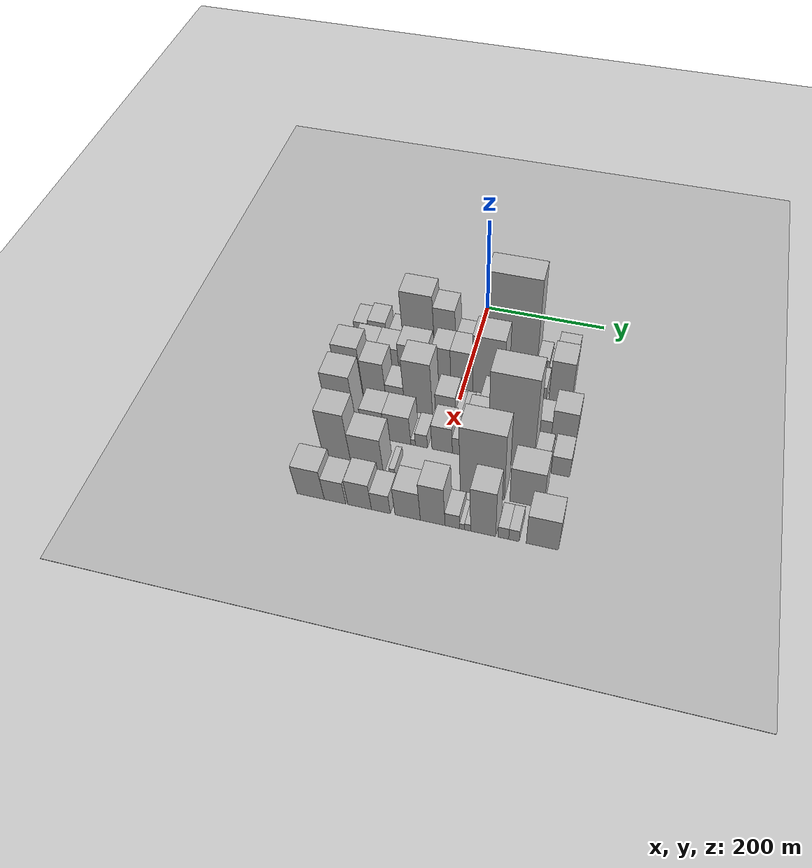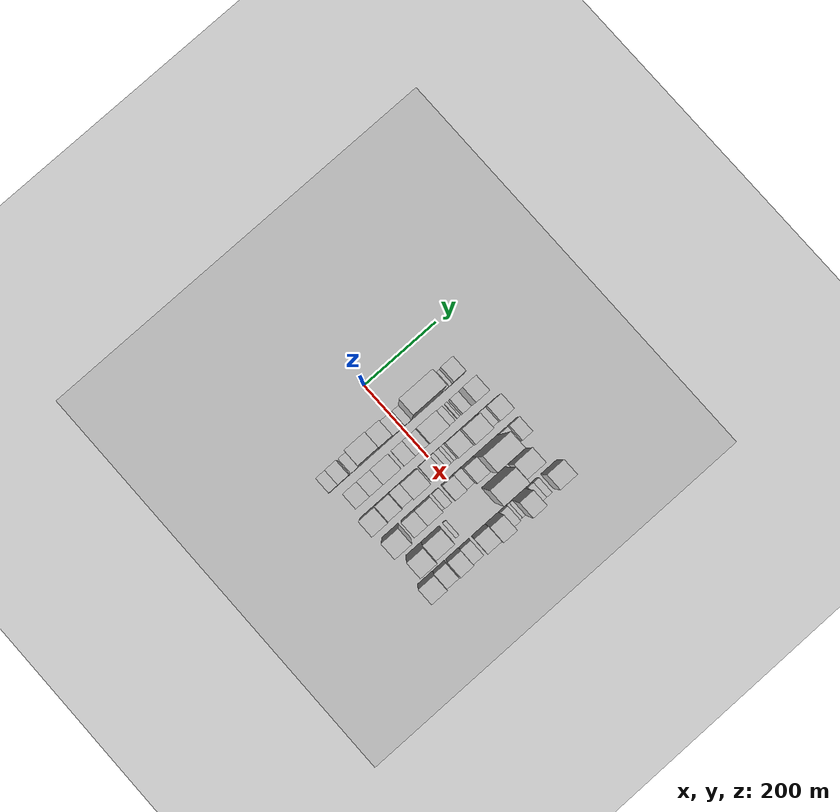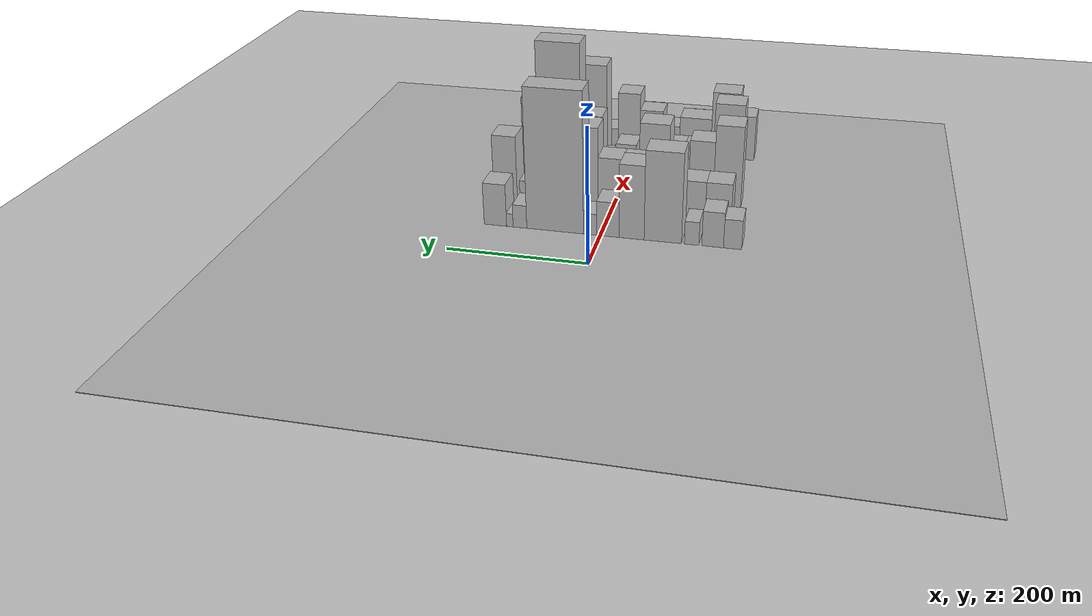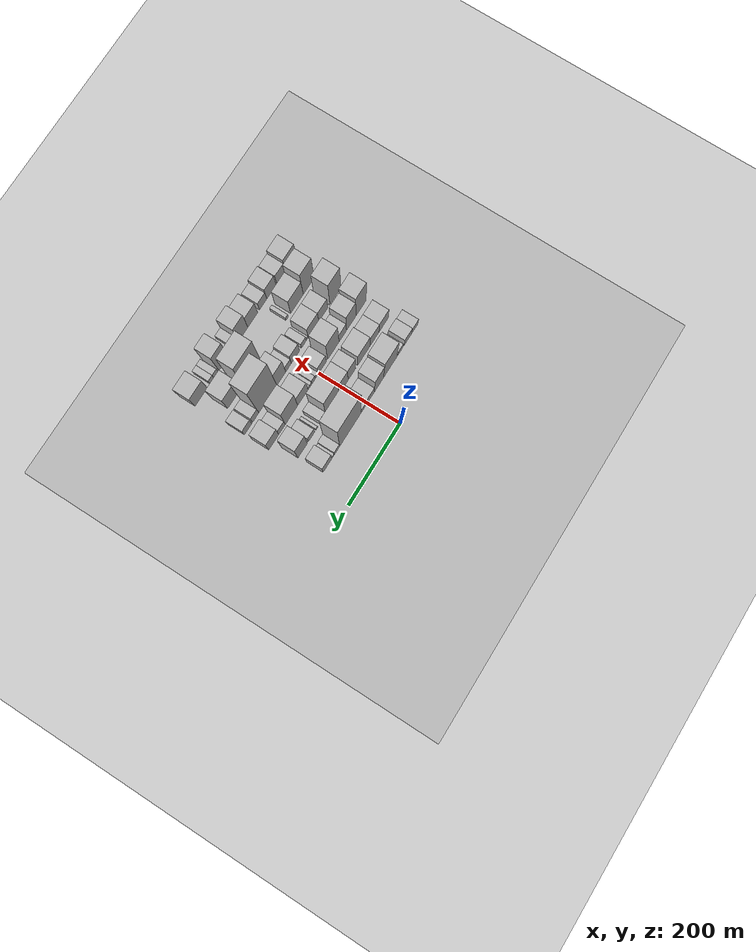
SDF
<sdf version="1.6">
 <world name="default">
  <include><name>ground_plane_1</name><uri>model://HANNAS_ground_plane</uri></include>
  <include>
   <name>ground_plane_2</name>
   <uri>model://HANNAS_ground_plane</uri>
   <pose>100 0 0  0 0 0</pose>
  </include>
  <model name="building_19">
   <static>1</static>
   <pose>100.0000 -186.5573 0 0.000000 0.000000 0.000000</pose>
   <link name="link">
    <pose>0 0 22.50 0 0 0</pose>
    <collision name="collision"><geometry><box><size>40.0000 25.0863 45.0000</size></box></geometry></collision>
    <visual name="visual">
     <cast_shadows>0</cast_shadows>
     <geometry><box><size>40.0000 25.0863 45.0000</size></box></geometry>
     <material>
      <script>
       <uri>model://HANNAS_wall/materials/scripts</uri>
       <uri>model://HANNAS_wall/materials/textures</uri>
       <name>vrc/HANNAS_wall</name>
      </script>
     </material>
    </visual>
   </link>
  </model>
  <model name="building_20">
   <static>1</static>
   <pose>100.0000 -158.9366 0 0.000000 0.000000 0.000000</pose>
   <link name="link">
    <pose>0 0 27.00 0 0 0</pose>
    <collision name="collision"><geometry><box><size>40.0000 30.1553 54.0000</size></box></geometry></collision>
    <visual name="visual">
     <cast_shadows>0</cast_shadows>
     <geometry><box><size>40.0000 30.1553 54.0000</size></box></geometry>
     <material>
      <script>
       <uri>model://HANNAS_wall/materials/scripts</uri>
       <uri>model://HANNAS_wall/materials/textures</uri>
       <name>vrc/HANNAS_wall</name>
      </script>
     </material>
    </visual>
   </link>
  </model>
  <model name="building_21">
   <static>1</static>
   <pose>100.0000 -129.6776 0 0.000000 0.000000 0.000000</pose>
   <link name="link">
    <pose>0 0 18.00 0 0 0</pose>
    <collision name="collision"><geometry><box><size>40.0000 20.3625 36.0000</size></box></geometry></collision>
    <visual name="visual">
     <cast_shadows>0</cast_shadows>
     <geometry><box><size>40.0000 20.3625 36.0000</size></box></geometry>
     <material>
      <script>
       <uri>model://HANNAS_wall/materials/scripts</uri>
       <uri>model://HANNAS_wall/materials/textures</uri>
       <name>vrc/HANNAS_wall</name>
      </script>
     </material>
    </visual>
   </link>
  </model>
  <model name="building_22">
   <static>1</static>
   <pose>100.0000 -89.0417 0 0.000000 0.000000 0.000000</pose>
   <link name="link">
    <pose>0 0 69.00 0 0 0</pose>
    <collision name="collision"><geometry><box><size>40.0000 52.9093 138.0000</size></box></geometry></collision>
    <visual name="visual">
     <cast_shadows>0</cast_shadows>
     <geometry><box><size>40.0000 52.9093 138.0000</size></box></geometry>
     <material>
      <script>
       <uri>model://HANNAS_wall/materials/scripts</uri>
       <uri>model://HANNAS_wall/materials/textures</uri>
       <name>vrc/HANNAS_wall</name>
      </script>
     </material>
    </visual>
   </link>
  </model>
  <model name="building_23">
   <static>1</static>
   <pose>100.0000 -44.6162 0 0.000000 0.000000 0.000000</pose>
   <link name="link">
    <pose>0 0 57.00 0 0 0</pose>
    <collision name="collision"><geometry><box><size>40.0000 35.9416 114.0000</size></box></geometry></collision>
    <visual name="visual">
     <cast_shadows>0</cast_shadows>
     <geometry><box><size>40.0000 35.9416 114.0000</size></box></geometry>
     <material>
      <script>
       <uri>model://HANNAS_wall/materials/scripts</uri>
       <uri>model://HANNAS_wall/materials/textures</uri>
       <name>vrc/HANNAS_wall</name>
      </script>
     </material>
    </visual>
   </link>
  </model>
  <model name="building_24">
   <static>1</static>
   <pose>100.0000 -10.5844 0 0.000000 0.000000 0.000000</pose>
   <link name="link">
    <pose>0 0 27.00 0 0 0</pose>
    <collision name="collision"><geometry><box><size>40.0000 32.1220 54.0000</size></box></geometry></collision>
    <visual name="visual">
     <cast_shadows>0</cast_shadows>
     <geometry><box><size>40.0000 32.1220 54.0000</size></box></geometry>
     <material>
      <script>
       <uri>model://HANNAS_wall/materials/scripts</uri>
       <uri>model://HANNAS_wall/materials/textures</uri>
       <name>vrc/HANNAS_wall</name>
      </script>
     </material>
    </visual>
   </link>
  </model>
  <model name="building_25">
   <static>1</static>
   <pose>100.0000 14.9822 0 0.000000 0.000000 0.000000</pose>
   <link name="link">
    <pose>0 0 16.50 0 0 0</pose>
    <collision name="collision"><geometry><box><size>40.0000 19.0114 33.0000</size></box></geometry></collision>
    <visual name="visual">
     <cast_shadows>0</cast_shadows>
     <geometry><box><size>40.0000 19.0114 33.0000</size></box></geometry>
     <material>
      <script>
       <uri>model://HANNAS_wall/materials/scripts</uri>
       <uri>model://HANNAS_wall/materials/textures</uri>
       <name>vrc/HANNAS_wall</name>
      </script>
     </material>
    </visual>
   </link>
  </model>
  <model name="building_26">
   <static>1</static>
   <pose>100.0000 66.0250 0 0.000000 0.000000 0.000000</pose>
   <link name="link">
    <pose>0 0 108.00 0 0 0</pose>
    <collision name="collision"><geometry><box><size>40.0000 83.0741 216.0000</size></box></geometry></collision>
    <visual name="visual">
     <cast_shadows>0</cast_shadows>
     <geometry><box><size>40.0000 83.0741 216.0000</size></box></geometry>
     <material>
      <script>
       <uri>model://HANNAS_wall/materials/scripts</uri>
       <uri>model://HANNAS_wall/materials/textures</uri>
       <name>vrc/HANNAS_wall</name>
      </script>
     </material>
    </visual>
   </link>
  </model>
  <model name="building_27">
   <static>1</static>
   <pose>100.0000 117.6457 0 0.000000 0.000000 0.000000</pose>
   <link name="link">
    <pose>0 0 18.00 0 0 0</pose>
    <collision name="collision"><geometry><box><size>40.0000 20.1674 36.0000</size></box></geometry></collision>
    <visual name="visual">
     <cast_shadows>0</cast_shadows>
     <geometry><box><size>40.0000 20.1674 36.0000</size></box></geometry>
     <material>
      <script>
       <uri>model://HANNAS_wall/materials/scripts</uri>
       <uri>model://HANNAS_wall/materials/textures</uri>
       <name>vrc/HANNAS_wall</name>
      </script>
     </material>
    </visual>
   </link>
  </model>
  <model name="building_28">
   <static>1</static>
   <pose>100.0000 132.5284 0 0.000000 0.000000 0.000000</pose>
   <link name="link">
    <pose>0 0 10.50 0 0 0</pose>
    <collision name="collision"><geometry><box><size>40.0000 9.5981 21.0000</size></box></geometry></collision>
    <visual name="visual">
     <cast_shadows>0</cast_shadows>
     <geometry><box><size>40.0000 9.5981 21.0000</size></box></geometry>
     <material>
      <script>
       <uri>model://HANNAS_wall/materials/scripts</uri>
       <uri>model://HANNAS_wall/materials/textures</uri>
       <name>vrc/HANNAS_wall</name>
      </script>
     </material>
    </visual>
   </link>
  </model>
  <model name="building_29">
   <static>1</static>
   <pose>100.0000 154.0062 0 0.000000 0.000000 0.000000</pose>
   <link name="link">
    <pose>0 0 33.00 0 0 0</pose>
    <collision name="collision"><geometry><box><size>40.0000 33.3574 66.0000</size></box></geometry></collision>
    <visual name="visual">
     <cast_shadows>0</cast_shadows>
     <geometry><box><size>40.0000 33.3574 66.0000</size></box></geometry>
     <material>
      <script>
       <uri>model://HANNAS_wall/materials/scripts</uri>
       <uri>model://HANNAS_wall/materials/textures</uri>
       <name>vrc/HANNAS_wall</name>
      </script>
     </material>
    </visual>
   </link>
  </model>
  <model name="building_75">
   <static>1</static>
   <pose>160.0000 -159.3010 0 0.000000 0.000000 0.000000</pose>
   <link name="link">
    <pose>0 0 34.50 0 0 0</pose>
    <collision name="collision"><geometry><box><size>40.0000 37.1538 69.0000</size></box></geometry></collision>
    <visual name="visual">
     <cast_shadows>0</cast_shadows>
     <geometry><box><size>40.0000 37.1538 69.0000</size></box></geometry>
     <material>
      <script>
       <uri>model://HANNAS_wall/materials/scripts</uri>
       <uri>model://HANNAS_wall/materials/textures</uri>
       <name>vrc/HANNAS_wall</name>
      </script>
     </material>
    </visual>
   </link>
  </model>
  <model name="building_76">
   <static>1</static>
   <pose>160.0000 -122.7183 0 0.000000 0.000000 0.000000</pose>
   <link name="link">
    <pose>0 0 34.50 0 0 0</pose>
    <collision name="collision"><geometry><box><size>40.0000 36.0114 69.0000</size></box></geometry></collision>
    <visual name="visual">
     <cast_shadows>0</cast_shadows>
     <geometry><box><size>40.0000 36.0114 69.0000</size></box></geometry>
     <material>
      <script>
       <uri>model://HANNAS_wall/materials/scripts</uri>
       <uri>model://HANNAS_wall/materials/textures</uri>
       <name>vrc/HANNAS_wall</name>
      </script>
     </material>
    </visual>
   </link>
  </model>
  <model name="building_77">
   <static>1</static>
   <pose>160.0000 -80.9137 0 0.000000 0.000000 0.000000</pose>
   <link name="link">
    <pose>0 0 42.00 0 0 0</pose>
    <collision name="collision"><geometry><box><size>40.0000 47.5979 84.0000</size></box></geometry></collision>
    <visual name="visual">
     <cast_shadows>0</cast_shadows>
     <geometry><box><size>40.0000 47.5979 84.0000</size></box></geometry>
     <material>
      <script>
       <uri>model://HANNAS_wall/materials/scripts</uri>
       <uri>model://HANNAS_wall/materials/textures</uri>
       <name>vrc/HANNAS_wall</name>
      </script>
     </material>
    </visual>
   </link>
  </model>
  <model name="building_78">
   <static>1</static>
   <pose>160.0000 -34.3015 0 0.000000 0.000000 0.000000</pose>
   <link name="link">
    <pose>0 0 46.50 0 0 0</pose>
    <collision name="collision"><geometry><box><size>40.0000 29.6264 93.0000</size></box></geometry></collision>
    <visual name="visual">
     <cast_shadows>0</cast_shadows>
     <geometry><box><size>40.0000 29.6264 93.0000</size></box></geometry>
     <material>
      <script>
       <uri>model://HANNAS_wall/materials/scripts</uri>
       <uri>model://HANNAS_wall/materials/textures</uri>
       <name>vrc/HANNAS_wall</name>
      </script>
     </material>
    </visual>
   </link>
  </model>
  <model name="building_79">
   <static>1</static>
   <pose>160.0000 -1.6350 0 0.000000 0.000000 0.000000</pose>
   <link name="link">
    <pose>0 0 46.50 0 0 0</pose>
    <collision name="collision"><geometry><box><size>40.0000 35.7067 93.0000</size></box></geometry></collision>
    <visual name="visual">
     <cast_shadows>0</cast_shadows>
     <geometry><box><size>40.0000 35.7067 93.0000</size></box></geometry>
     <material>
      <script>
       <uri>model://HANNAS_wall/materials/scripts</uri>
       <uri>model://HANNAS_wall/materials/textures</uri>
       <name>vrc/HANNAS_wall</name>
      </script>
     </material>
    </visual>
   </link>
  </model>
  <model name="building_80">
   <static>1</static>
   <pose>160.0000 41.6884 0 0.000000 0.000000 0.000000</pose>
   <link name="link">
    <pose>0 0 69.00 0 0 0</pose>
    <collision name="collision"><geometry><box><size>40.0000 50.9400 138.0000</size></box></geometry></collision>
    <visual name="visual">
     <cast_shadows>0</cast_shadows>
     <geometry><box><size>40.0000 50.9400 138.0000</size></box></geometry>
     <material>
      <script>
       <uri>model://HANNAS_wall/materials/scripts</uri>
       <uri>model://HANNAS_wall/materials/textures</uri>
       <name>vrc/HANNAS_wall</name>
      </script>
     </material>
    </visual>
   </link>
  </model>
  <model name="building_81">
   <static>1</static>
   <pose>160.0000 78.5458 0 0.000000 0.000000 0.000000</pose>
   <link name="link">
    <pose>0 0 21.00 0 0 0</pose>
    <collision name="collision"><geometry><box><size>40.0000 22.7749 42.0000</size></box></geometry></collision>
    <visual name="visual">
     <cast_shadows>0</cast_shadows>
     <geometry><box><size>40.0000 22.7749 42.0000</size></box></geometry>
     <material>
      <script>
       <uri>model://HANNAS_wall/materials/scripts</uri>
       <uri>model://HANNAS_wall/materials/textures</uri>
       <name>vrc/HANNAS_wall</name>
      </script>
     </material>
    </visual>
   </link>
  </model>
  <model name="building_82">
   <static>1</static>
   <pose>160.0000 101.3450 0 0.000000 0.000000 0.000000</pose>
   <link name="link">
    <pose>0 0 7.50 0 0 0</pose>
    <collision name="collision"><geometry><box><size>40.0000 6.8236 15.0000</size></box></geometry></collision>
    <visual name="visual">
     <cast_shadows>0</cast_shadows>
     <geometry><box><size>40.0000 6.8236 15.0000</size></box></geometry>
     <material>
      <script>
       <uri>model://HANNAS_wall/materials/scripts</uri>
       <uri>model://HANNAS_wall/materials/textures</uri>
       <name>vrc/HANNAS_wall</name>
      </script>
     </material>
    </visual>
   </link>
  </model>
  <model name="building_83">
   <static>1</static>
   <pose>160.0000 121.7376 0 0.000000 0.000000 0.000000</pose>
   <link name="link">
    <pose>0 0 22.50 0 0 0</pose>
    <collision name="collision"><geometry><box><size>40.0000 23.9615 45.0000</size></box></geometry></collision>
    <visual name="visual">
     <cast_shadows>0</cast_shadows>
     <geometry><box><size>40.0000 23.9615 45.0000</size></box></geometry>
     <material>
      <script>
       <uri>model://HANNAS_wall/materials/scripts</uri>
       <uri>model://HANNAS_wall/materials/textures</uri>
       <name>vrc/HANNAS_wall</name>
      </script>
     </material>
    </visual>
   </link>
  </model>
  <model name="building_84">
   <static>1</static>
   <pose>160.0000 155.5634 0 0.000000 0.000000 0.000000</pose>
   <link name="link">
    <pose>0 0 57.00 0 0 0</pose>
    <collision name="collision"><geometry><box><size>40.0000 35.6902 114.0000</size></box></geometry></collision>
    <visual name="visual">
     <cast_shadows>0</cast_shadows>
     <geometry><box><size>40.0000 35.6902 114.0000</size></box></geometry>
     <material>
      <script>
       <uri>model://HANNAS_wall/materials/scripts</uri>
       <uri>model://HANNAS_wall/materials/textures</uri>
       <name>vrc/HANNAS_wall</name>
      </script>
     </material>
    </visual>
   </link>
  </model>
  <model name="building_131">
   <static>1</static>
   <pose>220.0000 -165.0644 0 0.000000 0.000000 0.000000</pose>
   <link name="link">
    <pose>0 0 66.00 0 0 0</pose>
    <collision name="collision"><geometry><box><size>40.0000 40.8258 132.0000</size></box></geometry></collision>
    <visual name="visual">
     <cast_shadows>0</cast_shadows>
     <geometry><box><size>40.0000 40.8258 132.0000</size></box></geometry>
     <material>
      <script>
       <uri>model://HANNAS_wall/materials/scripts</uri>
       <uri>model://HANNAS_wall/materials/textures</uri>
       <name>vrc/HANNAS_wall</name>
      </script>
     </material>
    </visual>
   </link>
  </model>
  <model name="building_132">
   <static>1</static>
   <pose>220.0000 -126.2714 0 0.000000 0.000000 0.000000</pose>
   <link name="link">
    <pose>0 0 52.50 0 0 0</pose>
    <collision name="collision"><geometry><box><size>40.0000 36.7603 105.0000</size></box></geometry></collision>
    <visual name="visual">
     <cast_shadows>0</cast_shadows>
     <geometry><box><size>40.0000 36.7603 105.0000</size></box></geometry>
     <material>
      <script>
       <uri>model://HANNAS_wall/materials/scripts</uri>
       <uri>model://HANNAS_wall/materials/textures</uri>
       <name>vrc/HANNAS_wall</name>
      </script>
     </material>
    </visual>
   </link>
  </model>
  <model name="building_133">
   <static>1</static>
   <pose>220.0000 -93.1125 0 0.000000 0.000000 0.000000</pose>
   <link name="link">
    <pose>0 0 28.50 0 0 0</pose>
    <collision name="collision"><geometry><box><size>40.0000 29.5576 57.0000</size></box></geometry></collision>
    <visual name="visual">
     <cast_shadows>0</cast_shadows>
     <geometry><box><size>40.0000 29.5576 57.0000</size></box></geometry>
     <material>
      <script>
       <uri>model://HANNAS_wall/materials/scripts</uri>
       <uri>model://HANNAS_wall/materials/textures</uri>
       <name>vrc/HANNAS_wall</name>
      </script>
     </material>
    </visual>
   </link>
  </model>
  <model name="building_134">
   <static>1</static>
   <pose>220.0000 -56.0086 0 0.000000 0.000000 0.000000</pose>
   <link name="link">
    <pose>0 0 63.00 0 0 0</pose>
    <collision name="collision"><geometry><box><size>40.0000 44.6501 126.0000</size></box></geometry></collision>
    <visual name="visual">
     <cast_shadows>0</cast_shadows>
     <geometry><box><size>40.0000 44.6501 126.0000</size></box></geometry>
     <material>
      <script>
       <uri>model://HANNAS_wall/materials/scripts</uri>
       <uri>model://HANNAS_wall/materials/textures</uri>
       <name>vrc/HANNAS_wall</name>
      </script>
     </material>
    </visual>
   </link>
  </model>
  <model name="building_135">
   <static>1</static>
   <pose>220.0000 -12.7392 0 0.000000 0.000000 0.000000</pose>
   <link name="link">
    <pose>0 0 28.50 0 0 0</pose>
    <collision name="collision"><geometry><box><size>40.0000 31.8887 57.0000</size></box></geometry></collision>
    <visual name="visual">
     <cast_shadows>0</cast_shadows>
     <geometry><box><size>40.0000 31.8887 57.0000</size></box></geometry>
     <material>
      <script>
       <uri>model://HANNAS_wall/materials/scripts</uri>
       <uri>model://HANNAS_wall/materials/textures</uri>
       <name>vrc/HANNAS_wall</name>
      </script>
     </material>
    </visual>
   </link>
  </model>
  <model name="building_136">
   <static>1</static>
   <pose>220.0000 8.5156 0 0.000000 0.000000 0.000000</pose>
   <link name="link">
    <pose>0 0 12.00 0 0 0</pose>
    <collision name="collision"><geometry><box><size>40.0000 10.6209 24.0000</size></box></geometry></collision>
    <visual name="visual">
     <cast_shadows>0</cast_shadows>
     <geometry><box><size>40.0000 10.6209 24.0000</size></box></geometry>
     <material>
      <script>
       <uri>model://HANNAS_wall/materials/scripts</uri>
       <uri>model://HANNAS_wall/materials/textures</uri>
       <name>vrc/HANNAS_wall</name>
      </script>
     </material>
    </visual>
   </link>
  </model>
  <model name="building_137">
   <static>1</static>
   <pose>220.0000 20.4311 0 0.000000 0.000000 0.000000</pose>
   <link name="link">
    <pose>0 0 13.50 0 0 0</pose>
    <collision name="collision"><geometry><box><size>40.0000 13.2102 27.0000</size></box></geometry></collision>
    <visual name="visual">
     <cast_shadows>0</cast_shadows>
     <geometry><box><size>40.0000 13.2102 27.0000</size></box></geometry>
     <material>
      <script>
       <uri>model://HANNAS_wall/materials/scripts</uri>
       <uri>model://HANNAS_wall/materials/textures</uri>
       <name>vrc/HANNAS_wall</name>
      </script>
     </material>
    </visual>
   </link>
  </model>
  <model name="building_138">
   <static>1</static>
   <pose>220.0000 30.9808 0 0.000000 0.000000 0.000000</pose>
   <link name="link">
    <pose>0 0 9.00 0 0 0</pose>
    <collision name="collision"><geometry><box><size>40.0000 7.8892 18.0000</size></box></geometry></collision>
    <visual name="visual">
     <cast_shadows>0</cast_shadows>
     <geometry><box><size>40.0000 7.8892 18.0000</size></box></geometry>
     <material>
      <script>
       <uri>model://HANNAS_wall/materials/scripts</uri>
       <uri>model://HANNAS_wall/materials/textures</uri>
       <name>vrc/HANNAS_wall</name>
      </script>
     </material>
    </visual>
   </link>
  </model>
  <model name="building_139">
   <static>1</static>
   <pose>220.0000 38.6539 0 0.000000 0.000000 0.000000</pose>
   <link name="link">
    <pose>0 0 9.00 0 0 0</pose>
    <collision name="collision"><geometry><box><size>40.0000 7.4571 18.0000</size></box></geometry></collision>
    <visual name="visual">
     <cast_shadows>0</cast_shadows>
     <geometry><box><size>40.0000 7.4571 18.0000</size></box></geometry>
     <material>
      <script>
       <uri>model://HANNAS_wall/materials/scripts</uri>
       <uri>model://HANNAS_wall/materials/textures</uri>
       <name>vrc/HANNAS_wall</name>
      </script>
     </material>
    </visual>
   </link>
  </model>
  <model name="building_140">
   <static>1</static>
   <pose>220.0000 62.0052 0 0.000000 0.000000 0.000000</pose>
   <link name="link">
    <pose>0 0 37.50 0 0 0</pose>
    <collision name="collision"><geometry><box><size>40.0000 39.2454 75.0000</size></box></geometry></collision>
    <visual name="visual">
     <cast_shadows>0</cast_shadows>
     <geometry><box><size>40.0000 39.2454 75.0000</size></box></geometry>
     <material>
      <script>
       <uri>model://HANNAS_wall/materials/scripts</uri>
       <uri>model://HANNAS_wall/materials/textures</uri>
       <name>vrc/HANNAS_wall</name>
      </script>
     </material>
    </visual>
   </link>
  </model>
  <model name="building_141">
   <static>1</static>
   <pose>220.0000 105.3365 0 0.000000 0.000000 0.000000</pose>
   <link name="link">
    <pose>0 0 63.00 0 0 0</pose>
    <collision name="collision"><geometry><box><size>40.0000 47.4173 126.0000</size></box></geometry></collision>
    <visual name="visual">
     <cast_shadows>0</cast_shadows>
     <geometry><box><size>40.0000 47.4173 126.0000</size></box></geometry>
     <material>
      <script>
       <uri>model://HANNAS_wall/materials/scripts</uri>
       <uri>model://HANNAS_wall/materials/textures</uri>
       <name>vrc/HANNAS_wall</name>
      </script>
     </material>
    </visual>
   </link>
  </model>
  <model name="building_142">
   <static>1</static>
   <pose>220.0000 141.3280 0 0.000000 0.000000 0.000000</pose>
   <link name="link">
    <pose>0 0 22.50 0 0 0</pose>
    <collision name="collision"><geometry><box><size>40.0000 24.5657 45.0000</size></box></geometry></collision>
    <visual name="visual">
     <cast_shadows>0</cast_shadows>
     <geometry><box><size>40.0000 24.5657 45.0000</size></box></geometry>
     <material>
      <script>
       <uri>model://HANNAS_wall/materials/scripts</uri>
       <uri>model://HANNAS_wall/materials/textures</uri>
       <name>vrc/HANNAS_wall</name>
      </script>
     </material>
    </visual>
   </link>
  </model>
  <model name="building_143">
   <static>1</static>
   <pose>220.0000 172.6429 0 0.000000 0.000000 0.000000</pose>
   <link name="link">
    <pose>0 0 37.50 0 0 0</pose>
    <collision name="collision"><geometry><box><size>40.0000 38.0641 75.0000</size></box></geometry></collision>
    <visual name="visual">
     <cast_shadows>0</cast_shadows>
     <geometry><box><size>40.0000 38.0641 75.0000</size></box></geometry>
     <material>
      <script>
       <uri>model://HANNAS_wall/materials/scripts</uri>
       <uri>model://HANNAS_wall/materials/textures</uri>
       <name>vrc/HANNAS_wall</name>
      </script>
     </material>
    </visual>
   </link>
  </model>
  <model name="building_184">
   <static>1</static>
   <pose>280.0000 -158.3091 0 0.000000 0.000000 0.000000</pose>
   <link name="link">
    <pose>0 0 70.50 0 0 0</pose>
    <collision name="collision"><geometry><box><size>40.0000 43.9256 141.0000</size></box></geometry></collision>
    <visual name="visual">
     <cast_shadows>0</cast_shadows>
     <geometry><box><size>40.0000 43.9256 141.0000</size></box></geometry>
     <material>
      <script>
       <uri>model://HANNAS_wall/materials/scripts</uri>
       <uri>model://HANNAS_wall/materials/textures</uri>
       <name>vrc/HANNAS_wall</name>
      </script>
     </material>
    </visual>
   </link>
  </model>
  <model name="building_185">
   <static>1</static>
   <pose>280.0000 -110.6312 0 0.000000 0.000000 0.000000</pose>
   <link name="link">
    <pose>0 0 34.50 0 0 0</pose>
    <collision name="collision"><geometry><box><size>40.0000 35.4300 69.0000</size></box></geometry></collision>
    <visual name="visual">
     <cast_shadows>0</cast_shadows>
     <geometry><box><size>40.0000 35.4300 69.0000</size></box></geometry>
     <material>
      <script>
       <uri>model://HANNAS_wall/materials/scripts</uri>
       <uri>model://HANNAS_wall/materials/textures</uri>
       <name>vrc/HANNAS_wall</name>
      </script>
     </material>
    </visual>
   </link>
  </model>
  <model name="building_186">
   <static>1</static>
   <pose>280.0000 -72.2412 0 0.000000 0.000000 0.000000</pose>
   <link name="link">
    <pose>0 0 34.50 0 0 0</pose>
    <collision name="collision"><geometry><box><size>40.0000 41.3500 69.0000</size></box></geometry></collision>
    <visual name="visual">
     <cast_shadows>0</cast_shadows>
     <geometry><box><size>40.0000 41.3500 69.0000</size></box></geometry>
     <material>
      <script>
       <uri>model://HANNAS_wall/materials/scripts</uri>
       <uri>model://HANNAS_wall/materials/textures</uri>
       <name>vrc/HANNAS_wall</name>
      </script>
     </material>
    </visual>
   </link>
  </model>
  <model name="building_187">
   <static>1</static>
   <pose>280.0000 -48.0404 0 0.000000 0.000000 0.000000</pose>
   <link name="link">
    <pose>0 0 7.50 0 0 0</pose>
    <collision name="collision"><geometry><box><size>40.0000 7.0517 15.0000</size></box></geometry></collision>
    <visual name="visual">
     <cast_shadows>0</cast_shadows>
     <geometry><box><size>40.0000 7.0517 15.0000</size></box></geometry>
     <material>
      <script>
       <uri>model://HANNAS_wall/materials/scripts</uri>
       <uri>model://HANNAS_wall/materials/textures</uri>
       <name>vrc/HANNAS_wall</name>
      </script>
     </material>
    </visual>
   </link>
  </model>
  <model name="building_188">
   <static>1</static>
   <pose>280.0000 -34.9704 0 0.000000 0.000000 0.000000</pose>
   <link name="link">
    <pose>0 0 16.50 0 0 0</pose>
    <collision name="collision"><geometry><box><size>40.0000 19.0883 33.0000</size></box></geometry></collision>
    <visual name="visual">
     <cast_shadows>0</cast_shadows>
     <geometry><box><size>40.0000 19.0883 33.0000</size></box></geometry>
     <material>
      <script>
       <uri>model://HANNAS_wall/materials/scripts</uri>
       <uri>model://HANNAS_wall/materials/textures</uri>
       <name>vrc/HANNAS_wall</name>
      </script>
     </material>
    </visual>
   </link>
  </model>
  <model name="building_189">
   <static>1</static>
   <pose>280.0000 -2.4880 0 0.000000 0.000000 0.000000</pose>
   <link name="link">
    <pose>0 0 31.50 0 0 0</pose>
    <collision name="collision"><geometry><box><size>40.0000 31.8764 63.0000</size></box></geometry></collision>
    <visual name="visual">
     <cast_shadows>0</cast_shadows>
     <geometry><box><size>40.0000 31.8764 63.0000</size></box></geometry>
     <material>
      <script>
       <uri>model://HANNAS_wall/materials/scripts</uri>
       <uri>model://HANNAS_wall/materials/textures</uri>
       <name>vrc/HANNAS_wall</name>
      </script>
     </material>
    </visual>
   </link>
  </model>
  <model name="building_190">
   <static>1</static>
   <pose>280.0000 24.2292 0 0.000000 0.000000 0.000000</pose>
   <link name="link">
    <pose>0 0 21.00 0 0 0</pose>
    <collision name="collision"><geometry><box><size>40.0000 21.5579 42.0000</size></box></geometry></collision>
    <visual name="visual">
     <cast_shadows>0</cast_shadows>
     <geometry><box><size>40.0000 21.5579 42.0000</size></box></geometry>
     <material>
      <script>
       <uri>model://HANNAS_wall/materials/scripts</uri>
       <uri>model://HANNAS_wall/materials/textures</uri>
       <name>vrc/HANNAS_wall</name>
      </script>
     </material>
    </visual>
   </link>
  </model>
  <model name="building_191">
   <static>1</static>
   <pose>280.0000 52.1400 0 0.000000 0.000000 0.000000</pose>
   <link name="link">
    <pose>0 0 52.50 0 0 0</pose>
    <collision name="collision"><geometry><box><size>40.0000 34.2636 105.0000</size></box></geometry></collision>
    <visual name="visual">
     <cast_shadows>0</cast_shadows>
     <geometry><box><size>40.0000 34.2636 105.0000</size></box></geometry>
     <material>
      <script>
       <uri>model://HANNAS_wall/materials/scripts</uri>
       <uri>model://HANNAS_wall/materials/textures</uri>
       <name>vrc/HANNAS_wall</name>
      </script>
     </material>
    </visual>
   </link>
  </model>
  <model name="building_192">
   <static>1</static>
   <pose>280.0000 103.4872 0 0.000000 0.000000 0.000000</pose>
   <link name="link">
    <pose>0 0 109.50 0 0 0</pose>
    <collision name="collision"><geometry><box><size>40.0000 68.4309 219.0000</size></box></geometry></collision>
    <visual name="visual">
     <cast_shadows>0</cast_shadows>
     <geometry><box><size>40.0000 68.4309 219.0000</size></box></geometry>
     <material>
      <script>
       <uri>model://HANNAS_wall/materials/scripts</uri>
       <uri>model://HANNAS_wall/materials/textures</uri>
       <name>vrc/HANNAS_wall</name>
      </script>
     </material>
    </visual>
   </link>
  </model>
  <model name="building_193">
   <static>1</static>
   <pose>280.0000 149.5005 0 0.000000 0.000000 0.000000</pose>
   <link name="link">
    <pose>0 0 22.50 0 0 0</pose>
    <collision name="collision"><geometry><box><size>40.0000 23.5958 45.0000</size></box></geometry></collision>
    <visual name="visual">
     <cast_shadows>0</cast_shadows>
     <geometry><box><size>40.0000 23.5958 45.0000</size></box></geometry>
     <material>
      <script>
       <uri>model://HANNAS_wall/materials/scripts</uri>
       <uri>model://HANNAS_wall/materials/textures</uri>
       <name>vrc/HANNAS_wall</name>
      </script>
     </material>
    </visual>
   </link>
  </model>
  <model name="building_194">
   <static>1</static>
   <pose>280.0000 178.3176 0 0.000000 0.000000 0.000000</pose>
   <link name="link">
    <pose>0 0 24.00 0 0 0</pose>
    <collision name="collision"><geometry><box><size>40.0000 28.0384 48.0000</size></box></geometry></collision>
    <visual name="visual">
     <cast_shadows>0</cast_shadows>
     <geometry><box><size>40.0000 28.0384 48.0000</size></box></geometry>
     <material>
      <script>
       <uri>model://HANNAS_wall/materials/scripts</uri>
       <uri>model://HANNAS_wall/materials/textures</uri>
       <name>vrc/HANNAS_wall</name>
      </script>
     </material>
    </visual>
   </link>
  </model>
  <model name="building_235">
   <static>1</static>
   <pose>340.0000 -146.8899 0 0.000000 0.000000 0.000000</pose>
   <link name="link">
    <pose>0 0 67.50 0 0 0</pose>
    <collision name="collision"><geometry><box><size>40.0000 42.6318 135.0000</size></box></geometry></collision>
    <visual name="visual">
     <cast_shadows>0</cast_shadows>
     <geometry><box><size>40.0000 42.6318 135.0000</size></box></geometry>
     <material>
      <script>
       <uri>model://HANNAS_wall/materials/scripts</uri>
       <uri>model://HANNAS_wall/materials/textures</uri>
       <name>vrc/HANNAS_wall</name>
      </script>
     </material>
    </visual>
   </link>
  </model>
  <model name="building_236">
   <static>1</static>
   <pose>340.0000 -100.9393 0 0.000000 0.000000 0.000000</pose>
   <link name="link">
    <pose>0 0 45.00 0 0 0</pose>
    <collision name="collision"><geometry><box><size>40.0000 49.2695 90.0000</size></box></geometry></collision>
    <visual name="visual">
     <cast_shadows>0</cast_shadows>
     <geometry><box><size>40.0000 49.2695 90.0000</size></box></geometry>
     <material>
      <script>
       <uri>model://HANNAS_wall/materials/scripts</uri>
       <uri>model://HANNAS_wall/materials/textures</uri>
       <name>vrc/HANNAS_wall</name>
      </script>
     </material>
    </visual>
   </link>
  </model>
  <model name="building_237">
   <static>1</static>
   <pose>340.0000 -62.7473 0 0.000000 0.000000 0.000000</pose>
   <link name="link">
    <pose>0 0 10.50 0 0 0</pose>
    <collision name="collision"><geometry><box><size>40.0000 9.1145 21.0000</size></box></geometry></collision>
    <visual name="visual">
     <cast_shadows>0</cast_shadows>
     <geometry><box><size>40.0000 9.1145 21.0000</size></box></geometry>
     <material>
      <script>
       <uri>model://HANNAS_wall/materials/scripts</uri>
       <uri>model://HANNAS_wall/materials/textures</uri>
       <name>vrc/HANNAS_wall</name>
      </script>
     </material>
    </visual>
   </link>
  </model>
  <model name="building_238">
   <static>1</static>
   <pose>340.0000 73.6834 0 0.000000 0.000000 0.000000</pose>
   <link name="link">
    <pose>0 0 82.50 0 0 0</pose>
    <collision name="collision"><geometry><box><size>40.0000 65.9157 165.0000</size></box></geometry></collision>
    <visual name="visual">
     <cast_shadows>0</cast_shadows>
     <geometry><box><size>40.0000 65.9157 165.0000</size></box></geometry>
     <material>
      <script>
       <uri>model://HANNAS_wall/materials/scripts</uri>
       <uri>model://HANNAS_wall/materials/textures</uri>
       <name>vrc/HANNAS_wall</name>
      </script>
     </material>
    </visual>
   </link>
  </model>
  <model name="building_239">
   <static>1</static>
   <pose>340.0000 139.6969 0 0.000000 0.000000 0.000000</pose>
   <link name="link">
    <pose>0 0 45.00 0 0 0</pose>
    <collision name="collision"><geometry><box><size>40.0000 50.1113 90.0000</size></box></geometry></collision>
    <visual name="visual">
     <cast_shadows>0</cast_shadows>
     <geometry><box><size>40.0000 50.1113 90.0000</size></box></geometry>
     <material>
      <script>
       <uri>model://HANNAS_wall/materials/scripts</uri>
       <uri>model://HANNAS_wall/materials/textures</uri>
       <name>vrc/HANNAS_wall</name>
      </script>
     </material>
    </visual>
   </link>
  </model>
  <model name="building_285">
   <static>1</static>
   <pose>400.0000 -168.5928 0 0.000000 0.000000 0.000000</pose>
   <link name="link">
    <pose>0 0 37.50 0 0 0</pose>
    <collision name="collision"><geometry><box><size>40.0000 42.0019 75.0000</size></box></geometry></collision>
    <visual name="visual">
     <cast_shadows>0</cast_shadows>
     <geometry><box><size>40.0000 42.0019 75.0000</size></box></geometry>
     <material>
      <script>
       <uri>model://HANNAS_wall/materials/scripts</uri>
       <uri>model://HANNAS_wall/materials/textures</uri>
       <name>vrc/HANNAS_wall</name>
      </script>
     </material>
    </visual>
   </link>
  </model>
  <model name="building_286">
   <static>1</static>
   <pose>400.0000 -131.2380 0 0.000000 0.000000 0.000000</pose>
   <link name="link">
    <pose>0 0 28.50 0 0 0</pose>
    <collision name="collision"><geometry><box><size>40.0000 32.7076 57.0000</size></box></geometry></collision>
    <visual name="visual">
     <cast_shadows>0</cast_shadows>
     <geometry><box><size>40.0000 32.7076 57.0000</size></box></geometry>
     <material>
      <script>
       <uri>model://HANNAS_wall/materials/scripts</uri>
       <uri>model://HANNAS_wall/materials/textures</uri>
       <name>vrc/HANNAS_wall</name>
      </script>
     </material>
    </visual>
   </link>
  </model>
  <model name="building_287">
   <static>1</static>
   <pose>400.0000 -93.9843 0 0.000000 0.000000 0.000000</pose>
   <link name="link">
    <pose>0 0 33.00 0 0 0</pose>
    <collision name="collision"><geometry><box><size>40.0000 35.7999 66.0000</size></box></geometry></collision>
    <visual name="visual">
     <cast_shadows>0</cast_shadows>
     <geometry><box><size>40.0000 35.7999 66.0000</size></box></geometry>
     <material>
      <script>
       <uri>model://HANNAS_wall/materials/scripts</uri>
       <uri>model://HANNAS_wall/materials/textures</uri>
       <name>vrc/HANNAS_wall</name>
      </script>
     </material>
    </visual>
   </link>
  </model>
  <model name="building_288">
   <static>1</static>
   <pose>400.0000 -61.9106 0 0.000000 0.000000 0.000000</pose>
   <link name="link">
    <pose>0 0 24.00 0 0 0</pose>
    <collision name="collision"><geometry><box><size>40.0000 28.3475 48.0000</size></box></geometry></collision>
    <visual name="visual">
     <cast_shadows>0</cast_shadows>
     <geometry><box><size>40.0000 28.3475 48.0000</size></box></geometry>
     <material>
      <script>
       <uri>model://HANNAS_wall/materials/scripts</uri>
       <uri>model://HANNAS_wall/materials/textures</uri>
       <name>vrc/HANNAS_wall</name>
      </script>
     </material>
    </visual>
   </link>
  </model>
  <model name="building_289">
   <static>1</static>
   <pose>400.0000 -21.8293 0 0.000000 0.000000 0.000000</pose>
   <link name="link">
    <pose>0 0 36.00 0 0 0</pose>
    <collision name="collision"><geometry><box><size>40.0000 37.8150 72.0000</size></box></geometry></collision>
    <visual name="visual">
     <cast_shadows>0</cast_shadows>
     <geometry><box><size>40.0000 37.8150 72.0000</size></box></geometry>
     <material>
      <script>
       <uri>model://HANNAS_wall/materials/scripts</uri>
       <uri>model://HANNAS_wall/materials/textures</uri>
       <name>vrc/HANNAS_wall</name>
      </script>
     </material>
    </visual>
   </link>
  </model>
  <model name="building_290">
   <static>1</static>
   <pose>400.0000 15.2676 0 0.000000 0.000000 0.000000</pose>
   <link name="link">
    <pose>0 0 49.50 0 0 0</pose>
    <collision name="collision"><geometry><box><size>40.0000 36.3787 99.0000</size></box></geometry></collision>
    <visual name="visual">
     <cast_shadows>0</cast_shadows>
     <geometry><box><size>40.0000 36.3787 99.0000</size></box></geometry>
     <material>
      <script>
       <uri>model://HANNAS_wall/materials/scripts</uri>
       <uri>model://HANNAS_wall/materials/textures</uri>
       <name>vrc/HANNAS_wall</name>
      </script>
     </material>
    </visual>
   </link>
  </model>
  <model name="building_291">
   <static>1</static>
   <pose>400.0000 44.1199 0 0.000000 0.000000 0.000000</pose>
   <link name="link">
    <pose>0 0 18.00 0 0 0</pose>
    <collision name="collision"><geometry><box><size>40.0000 21.3261 36.0000</size></box></geometry></collision>
    <visual name="visual">
     <cast_shadows>0</cast_shadows>
     <geometry><box><size>40.0000 21.3261 36.0000</size></box></geometry>
     <material>
      <script>
       <uri>model://HANNAS_wall/materials/scripts</uri>
       <uri>model://HANNAS_wall/materials/textures</uri>
       <name>vrc/HANNAS_wall</name>
      </script>
     </material>
    </visual>
   </link>
  </model>
  <model name="building_292">
   <static>1</static>
   <pose>400.0000 58.4900 0 0.000000 0.000000 0.000000</pose>
   <link name="link">
    <pose>0 0 7.50 0 0 0</pose>
    <collision name="collision"><geometry><box><size>40.0000 7.4141 15.0000</size></box></geometry></collision>
    <visual name="visual">
     <cast_shadows>0</cast_shadows>
     <geometry><box><size>40.0000 7.4141 15.0000</size></box></geometry>
     <material>
      <script>
       <uri>model://HANNAS_wall/materials/scripts</uri>
       <uri>model://HANNAS_wall/materials/textures</uri>
       <name>vrc/HANNAS_wall</name>
      </script>
     </material>
    </visual>
   </link>
  </model>
  <model name="building_293">
   <static>1</static>
   <pose>400.0000 66.4324 0 0.000000 0.000000 0.000000</pose>
   <link name="link">
    <pose>0 0 9.00 0 0 0</pose>
    <collision name="collision"><geometry><box><size>40.0000 8.4706 18.0000</size></box></geometry></collision>
    <visual name="visual">
     <cast_shadows>0</cast_shadows>
     <geometry><box><size>40.0000 8.4706 18.0000</size></box></geometry>
     <material>
      <script>
       <uri>model://HANNAS_wall/materials/scripts</uri>
       <uri>model://HANNAS_wall/materials/textures</uri>
       <name>vrc/HANNAS_wall</name>
      </script>
     </material>
    </visual>
   </link>
  </model>
  <model name="building_294">
   <static>1</static>
   <pose>400.0000 88.9994 0 0.000000 0.000000 0.000000</pose>
   <link name="link">
    <pose>0 0 58.50 0 0 0</pose>
    <collision name="collision"><geometry><box><size>40.0000 36.6635 117.0000</size></box></geometry></collision>
    <visual name="visual">
     <cast_shadows>0</cast_shadows>
     <geometry><box><size>40.0000 36.6635 117.0000</size></box></geometry>
     <material>
      <script>
       <uri>model://HANNAS_wall/materials/scripts</uri>
       <uri>model://HANNAS_wall/materials/textures</uri>
       <name>vrc/HANNAS_wall</name>
      </script>
     </material>
    </visual>
   </link>
  </model>
  <model name="building_295">
   <static>1</static>
   <pose>400.0000 118.1720 0 0.000000 0.000000 0.000000</pose>
   <link name="link">
    <pose>0 0 15.00 0 0 0</pose>
    <collision name="collision"><geometry><box><size>40.0000 15.6818 30.0000</size></box></geometry></collision>
    <visual name="visual">
     <cast_shadows>0</cast_shadows>
     <geometry><box><size>40.0000 15.6818 30.0000</size></box></geometry>
     <material>
      <script>
       <uri>model://HANNAS_wall/materials/scripts</uri>
       <uri>model://HANNAS_wall/materials/textures</uri>
       <name>vrc/HANNAS_wall</name>
      </script>
     </material>
    </visual>
   </link>
  </model>
  <model name="building_296">
   <static>1</static>
   <pose>400.0000 133.5701 0 0.000000 0.000000 0.000000</pose>
   <link name="link">
    <pose>0 0 15.00 0 0 0</pose>
    <collision name="collision"><geometry><box><size>40.0000 15.1145 30.0000</size></box></geometry></collision>
    <visual name="visual">
     <cast_shadows>0</cast_shadows>
     <geometry><box><size>40.0000 15.1145 30.0000</size></box></geometry>
     <material>
      <script>
       <uri>model://HANNAS_wall/materials/scripts</uri>
       <uri>model://HANNAS_wall/materials/textures</uri>
       <name>vrc/HANNAS_wall</name>
      </script>
     </material>
    </visual>
   </link>
  </model>
  <model name="building_297">
   <static>1</static>
   <pose>400.0000 174.0777 0 0.000000 0.000000 0.000000</pose>
   <link name="link">
    <pose>0 0 39.00 0 0 0</pose>
    <collision name="collision"><geometry><box><size>40.0000 45.9007 78.0000</size></box></geometry></collision>
    <visual name="visual">
     <cast_shadows>0</cast_shadows>
     <geometry><box><size>40.0000 45.9007 78.0000</size></box></geometry>
     <material>
      <script>
       <uri>model://HANNAS_wall/materials/scripts</uri>
       <uri>model://HANNAS_wall/materials/textures</uri>
       <name>vrc/HANNAS_wall</name>
      </script>
     </material>
    </visual>
   </link>
  </model>
 </world>
</sdf>
